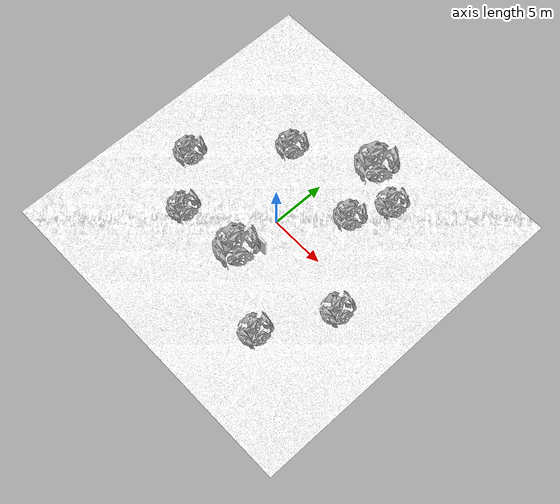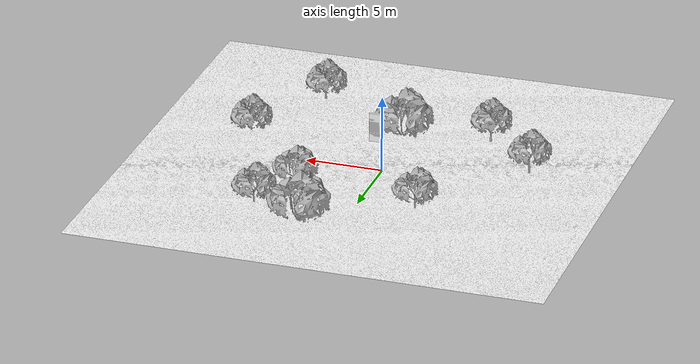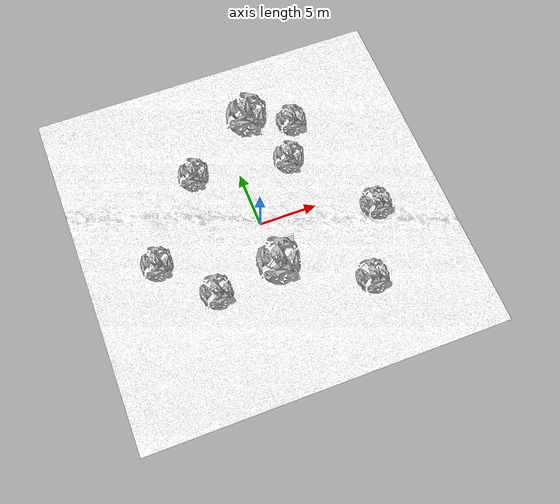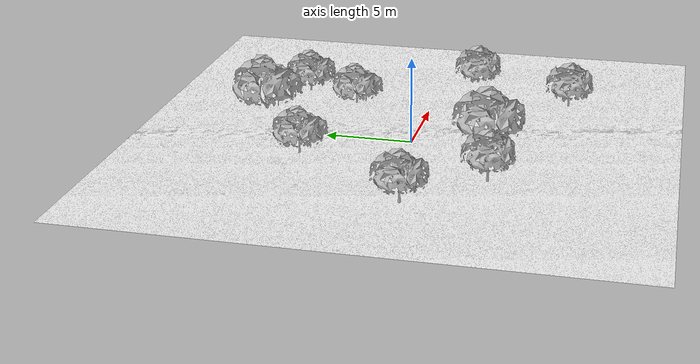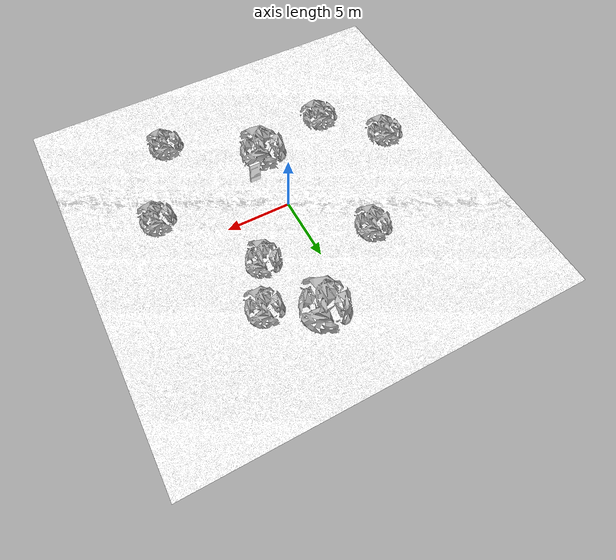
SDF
<!--
  Outdoor scenario from HRATC repository:
  https://github.com/ras-sight/hratc2014_framework
-->
<?xml version="1.0" encoding="UTF-8" ?>
<sdf version="1.4">
  <world name="default">
    <scene>
      <ambient>0.5 0.5 0.5 1</ambient>
      <background>0.5 0.5 0.5 1</background>
      <shadows>false</shadows>
    </scene>
    <physics type="ode">
      <gravity>0 0 -9.81</gravity>
      <ode>
        <solver>
          <type>quick</type>
          <iters>10</iters>
          <sor>1.3</sor>
        </solver>
        <constraints>
          <cfm>0.0</cfm>
          <erp>0.2</erp>
          <contact_max_correcting_vel>10</contact_max_correcting_vel>
          <contact_surface_layer>0.001</contact_surface_layer>
        </constraints>
      </ode>
      <max_step_size>0.001</max_step_size>
    </physics>
    <light type="directional" name="directional_light_1">
      <pose>0 20 20 0.1 0.1 0</pose>
      <diffuse>1 1 1 1</diffuse>
      <specular>1 1 1 1</specular>
      <attenuation>
        <range>300</range>
      </attenuation>
      <direction>0.1 0.1 -1</direction>
      <cast_shadows>false</cast_shadows>
    </light>

    <include>
      <uri>model://scenario2</uri>
      <name>landscape</name>
      <pose>-15.0 -15.0 0.5 0 0 0</pose>
    </include>

    <!-- Trees!!! -->

    <include>
      <uri>model://OliveTree1</uri>
      <name>tree1</name>
      <pose>3 3 0.1 0 0 0</pose>
    </include>

    <include>
      <uri>model://OliveTree1</uri>
      <name>tree2</name>
      <pose>5 6 0.2 0 0 0.3</pose>
    </include>

    <include>
      <uri>model://OliveTree2</uri>
      <name>tree3</name>
      <pose>1 8 0.4 0 0 0</pose>
    </include>

    <include>
      <uri>model://OliveTree1</uri>
      <name>tree4</name>
      <pose>-5 4 0.3 0 0 0.1</pose>
    </include>

    <include>
      <uri>model://OliveTree1</uri>
      <name>tree5</name>
      <pose>-10 -3 0.6 0 0 0.3</pose>
    </include>

    <include>
      <uri>model://OliveTree1</uri>
      <name>tree6</name>
      <pose>-6 -7 0.52 0 0 0.5</pose>
    </include>

    <include>
      <uri>model://OliveTree2</uri>
      <name>tree7</name>
      <pose>-1 -6 0.3 0 0 0.2</pose>
    </include>

    <include>
      <uri>model://OliveTree1</uri>
      <name>tree8</name>
      <pose>9 -4 0.0 0 0 0.5</pose>
    </include>

     <include>
      <uri>model://OliveTree1</uri>
      <name>tree9</name>
      <pose>6 -10 0.3 0 0 0.5</pose>
    </include>
    <model name='qr_wall'>
      <pose frame=''>1.771349 -2.939604 0.578627 0 -0 1.57</pose>
      <static>1</static>
      <link name='body'>
        <inertial>
          <mass>1</mass>
          <inertia>
            <ixx>0.166667</ixx>
            <ixy>0</ixy>
            <ixz>0</ixz>
            <iyy>0.166667</iyy>
            <iyz>0</iyz>
            <izz>0.166667</izz>
          </inertia>
        </inertial>
        <collision name='collision'>
          <geometry>
            <box>
              <size>1 1 1</size>
            </box>
          </geometry>
          <max_contacts>10</max_contacts>
          <surface>
            <contact>
              <ode/>
            </contact>
            <bounce/>
            <friction>
              <torsional>
                <ode/>
              </torsional>
              <ode/>
            </friction>
          </surface>
        </collision>
        <visual name='visual'>
          <geometry>
            <mesh>
              <uri>model://qr_wall/meshes/qr_wall.dae</uri>
            </mesh>
          </geometry>
        </visual>
        <self_collide>0</self_collide>
        <enable_wind>0</enable_wind>
        <kinematic>0</kinematic>
      </link>
    </model>
    <model name='qr_wall'>
        <pose frame=''>0.444996 0.521404 0 0 -0 1.57</pose>
        <scale>1 1 1</scale>
        <link name='body'>
          <pose frame=''>0.444996 0.521404 0 0 -0 1.57</pose>
          <velocity>0 0 0 0 -0 0</velocity>
          <acceleration>0 0 0 0 -0 0</acceleration>
          <wrench>0 0 0 0 -0 0</wrench>
        </link>
      </model>
  </world>
</sdf>

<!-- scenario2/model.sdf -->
<sdf version="1.5">
  <model name="scenario2">
      <link name="scenario2_link">
        <collision name="scenario2_collision">
          <geometry>
            <mesh>
	          <uri>model://scenario2/meshes/scenario2.dae</uri>
              <scale>1 1 0.005</scale>
            </mesh>
          </geometry>
        </collision>
        <visual name="scenario2_visual">
          <geometry>
            <mesh>
	          <uri>model://scenario2/meshes/scenario2.dae</uri>
              <scale>1 1 0.005</scale>
            </mesh>
          </geometry>
          <cast_shadows>false</cast_shadows>
        </visual>
      </link>
      <static>true</static>
    </model>
</sdf>

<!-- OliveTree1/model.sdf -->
<sdf version="1.5">
  <model name="OliveTree1">
      <static>true</static>
      <link name="OliveTree1_link">
	  <collision name="OliveTree1_collision">
	      <geometry>
		  <mesh>
		    <uri>model://OliveTree1/meshes/OliveTree1.dae</uri>
		    <scale>1 1 1</scale>
		  </mesh>
	      </geometry>
	  </collision>
	  <visual name="OliveTree1_visual">
	      <geometry>
		<mesh>
		  <uri>model://OliveTree1/meshes/OliveTree1.dae</uri>
		  <scale>1 1 1</scale>
		</mesh>
	      </geometry>
	      <cast_shadows>false</cast_shadows>
	  </visual>
      </link>
    </model>
</sdf>

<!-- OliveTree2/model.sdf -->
<sdf version="1.5">
  <model name="OliveTree2">
      <static>true</static>
      <link name="OliveTree2_link">
	  <collision name="OliveTree2_collision">
	      <geometry>
		  <mesh>
		    <uri>model://OliveTree2/meshes/OliveTree2.dae</uri>
		    <scale>1 1 1</scale>
		  </mesh>
	      </geometry>
	  </collision>
	  <visual name="OliveTree2_visual">
	      <geometry>
		<mesh>
		  <uri>model://OliveTree2/meshes/OliveTree2.dae</uri>
		  <scale>1 1 1</scale>
		</mesh>
	      </geometry>
	      <cast_shadows>false</cast_shadows>
	  </visual>
      </link>
    </model>
</sdf>
